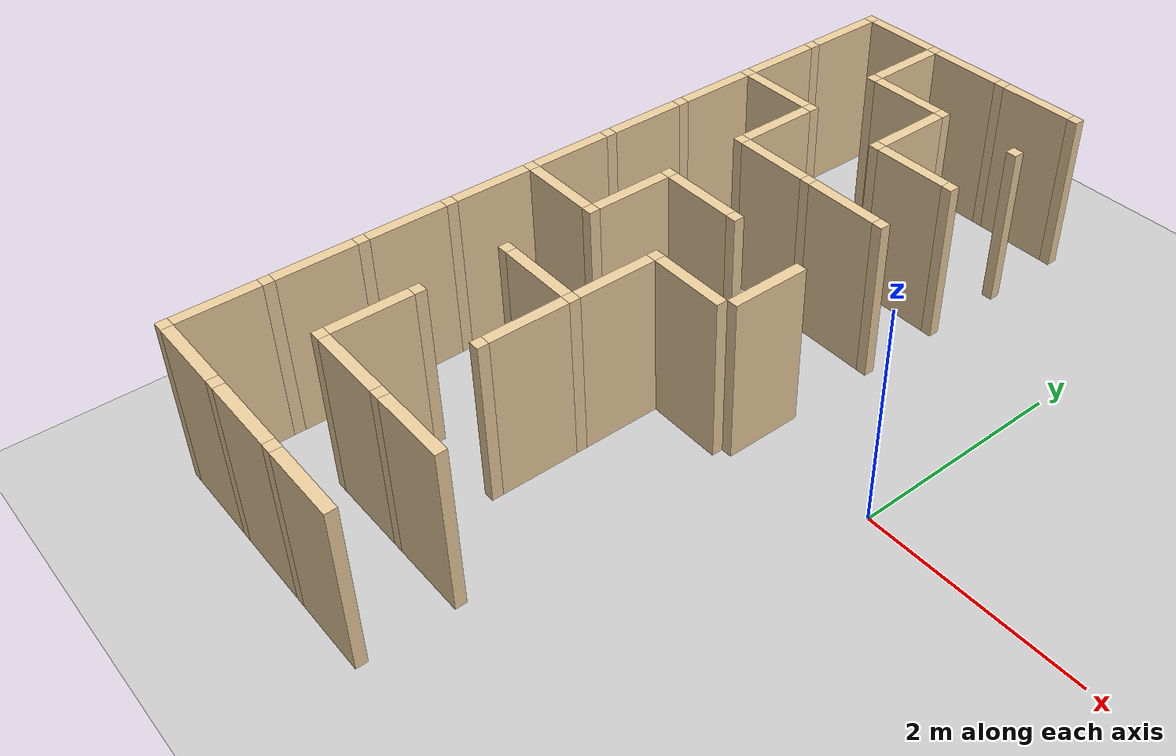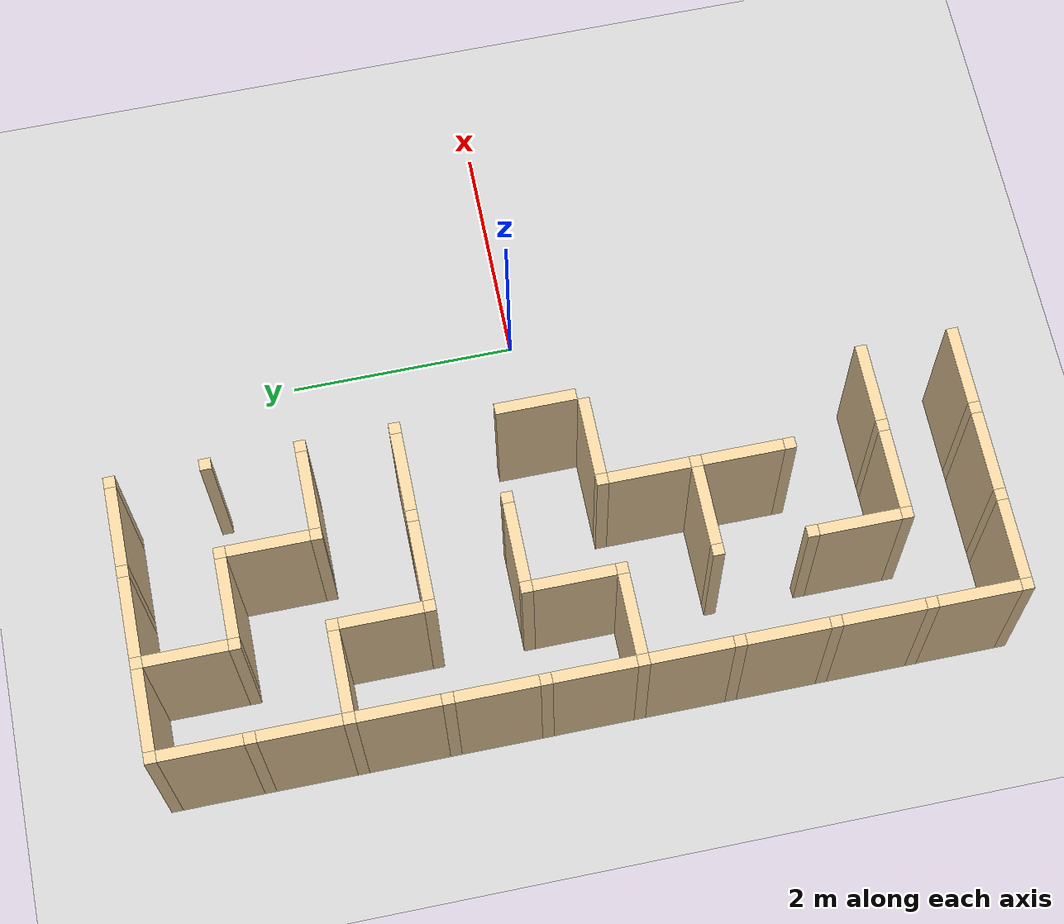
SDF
<sdf version="1.8">
 <world name="maze_world">
  <model name="ground_plane">
   <static>true</static>
   <link name="link">
    <collision name="collision">
     <geometry><plane><normal>0 0 1</normal><size>100 100</size></plane></geometry>
    </collision>
    <visual name="visual">
     <geometry><plane><normal>0 0 1</normal><size>100 100</size></plane></geometry>
     <material><ambient>0.8 0.8 0.8 1</ambient><diffuse>0.8 0.8 0.8 1</diffuse></material>
    </visual>
   </link>
  </model>
  <model name="maze">
   <link name="Wall_0_0_h">
    <collision name="Wall_0_Collision">
     <geometry><box><size>0.7000000000000001 0.1 1.5</size></box></geometry>
     <pose>0 0 0.75 0 -0 0</pose>
    </collision>
    <visual name="Wall_0_Visual">
     <pose>0 0 0.75 0 -0 0</pose>
     <geometry><box><size>0.7000000000000001 0.1 1.5</size></box></geometry>
     <material>
      <diffuse>0.921569 0.807843 0.615686 1</diffuse>
      <ambient>0.921569 0.807843 0.615686 1</ambient>
     </material>
     <meta><layer>0</layer></meta>
    </visual>
    <pose>-3.2 3.6 0 0 -0 0</pose>
   </link>
   <link name="Wall_0_0_v">
    <collision name="Wall_0_Collision">
     <geometry><box><size>0.7000000000000001 0.1 1.5</size></box></geometry>
     <pose>0 0 0.75 0 -0 0</pose>
    </collision>
    <visual name="Wall_0_Visual">
     <pose>0 0 0.75 0 -0 0</pose>
     <geometry><box><size>0.7000000000000001 0.1 1.5</size></box></geometry>
     <material>
      <diffuse>0.921569 0.807843 0.615686 1</diffuse>
      <ambient>0.921569 0.807843 0.615686 1</ambient>
     </material>
     <meta><layer>0</layer></meta>
    </visual>
    <pose>-3.6 3.2 0 0 -0 1.5708</pose>
   </link>
   <link name="Joint_-3.6_3.6">
    <collision name="Wall_2_Collision">
     <geometry><box><size>0.1 0.1 1.5</size></box></geometry>
     <pose>0 0 0.75 0 -0 0</pose>
    </collision>
    <visual name="Wall_2_Visual">
     <pose>0 0 0.75 0 -0 0</pose>
     <geometry><box><size>0.1 0.1 1.5</size></box></geometry>
     <material>
      <diffuse>0.921569 0.807843 0.615686 1</diffuse>
      <ambient>0.721569 0.907843 0.215686 1</ambient>
     </material>
     <meta><layer>0</layer></meta>
    </visual>
    <pose>-3.6 3.6 0 0 -0 0</pose>
   </link>
   <link name="Wall_1_0_h">
    <collision name="Wall_0_Collision">
     <geometry><box><size>0.7000000000000001 0.1 1.5</size></box></geometry>
     <pose>0 0 0.75 0 -0 0</pose>
    </collision>
    <visual name="Wall_0_Visual">
     <pose>0 0 0.75 0 -0 0</pose>
     <geometry><box><size>0.7000000000000001 0.1 1.5</size></box></geometry>
     <material>
      <diffuse>0.921569 0.807843 0.615686 1</diffuse>
      <ambient>0.921569 0.807843 0.615686 1</ambient>
     </material>
     <meta><layer>0</layer></meta>
    </visual>
    <pose>-2.4 3.6 0 0 -0 0</pose>
   </link>
   <link name="Wall_1_0_v">
    <collision name="Wall_0_Collision">
     <geometry><box><size>0.7000000000000001 0.1 1.5</size></box></geometry>
     <pose>0 0 0.75 0 -0 0</pose>
    </collision>
    <visual name="Wall_0_Visual">
     <pose>0 0 0.75 0 -0 0</pose>
     <geometry><box><size>0.7000000000000001 0.1 1.5</size></box></geometry>
     <material>
      <diffuse>0.921569 0.807843 0.615686 1</diffuse>
      <ambient>0.921569 0.807843 0.615686 1</ambient>
     </material>
     <meta><layer>0</layer></meta>
    </visual>
    <pose>-2.8 3.2 0 0 -0 1.5708</pose>
   </link>
   <link name="Joint_-2.8_3.6">
    <collision name="Wall_2_Collision">
     <geometry><box><size>0.1 0.1 1.5</size></box></geometry>
     <pose>0 0 0.75 0 -0 0</pose>
    </collision>
    <visual name="Wall_2_Visual">
     <pose>0 0 0.75 0 -0 0</pose>
     <geometry><box><size>0.1 0.1 1.5</size></box></geometry>
     <material>
      <diffuse>0.921569 0.807843 0.615686 1</diffuse>
      <ambient>0.721569 0.907843 0.215686 1</ambient>
     </material>
     <meta><layer>0</layer></meta>
    </visual>
    <pose>-2.8 3.6 0 0 -0 0</pose>
   </link>
   <link name="Wall_2_0_h">
    <collision name="Wall_0_Collision">
     <geometry><box><size>0.7000000000000001 0.1 1.5</size></box></geometry>
     <pose>0 0 0.75 0 -0 0</pose>
    </collision>
    <visual name="Wall_0_Visual">
     <pose>0 0 0.75 0 -0 0</pose>
     <geometry><box><size>0.7000000000000001 0.1 1.5</size></box></geometry>
     <material>
      <diffuse>0.921569 0.807843 0.615686 1</diffuse>
      <ambient>0.921569 0.807843 0.615686 1</ambient>
     </material>
     <meta><layer>0</layer></meta>
    </visual>
    <pose>-1.6 3.6 0 0 -0 0</pose>
   </link>
   <link name="Joint_-2.0_3.6">
    <collision name="Wall_2_Collision">
     <geometry><box><size>0.1 0.1 1.5</size></box></geometry>
     <pose>0 0 0.75 0 -0 0</pose>
    </collision>
    <visual name="Wall_2_Visual">
     <pose>0 0 0.75 0 -0 0</pose>
     <geometry><box><size>0.1 0.1 1.5</size></box></geometry>
     <material>
      <diffuse>0.921569 0.807843 0.615686 1</diffuse>
      <ambient>0.721569 0.907843 0.215686 1</ambient>
     </material>
     <meta><layer>0</layer></meta>
    </visual>
    <pose>-2.0 3.6 0 0 -0 0</pose>
   </link>
   <link name="Joint_-1.1999999999999997_3.6">
    <collision name="Wall_2_Collision">
     <geometry><box><size>0.1 0.1 1.5</size></box></geometry>
     <pose>0 0 0.75 0 -0 0</pose>
    </collision>
    <visual name="Wall_2_Visual">
     <pose>0 0 0.75 0 -0 0</pose>
     <geometry><box><size>0.1 0.1 1.5</size></box></geometry>
     <material>
      <diffuse>0.921569 0.807843 0.615686 1</diffuse>
      <ambient>0.721569 0.907843 0.215686 1</ambient>
     </material>
     <meta><layer>0</layer></meta>
    </visual>
    <pose>-1.1999999999999997 3.6 0 0 -0 0</pose>
   </link>
   <link name="Wall_0_1_v">
    <collision name="Wall_0_Collision">
     <geometry><box><size>0.7000000000000001 0.1 1.5</size></box></geometry>
     <pose>0 0 0.75 0 -0 0</pose>
    </collision>
    <visual name="Wall_0_Visual">
     <pose>0 0 0.75 0 -0 0</pose>
     <geometry><box><size>0.7000000000000001 0.1 1.5</size></box></geometry>
     <material>
      <diffuse>0.921569 0.807843 0.615686 1</diffuse>
      <ambient>0.921569 0.807843 0.615686 1</ambient>
     </material>
     <meta><layer>0</layer></meta>
    </visual>
    <pose>-3.6 2.4 0 0 -0 1.5708</pose>
   </link>
   <link name="Joint_-3.6_2.8">
    <collision name="Wall_2_Collision">
     <geometry><box><size>0.1 0.1 1.5</size></box></geometry>
     <pose>0 0 0.75 0 -0 0</pose>
    </collision>
    <visual name="Wall_2_Visual">
     <pose>0 0 0.75 0 -0 0</pose>
     <geometry><box><size>0.1 0.1 1.5</size></box></geometry>
     <material>
      <diffuse>0.921569 0.807843 0.615686 1</diffuse>
      <ambient>0.721569 0.907843 0.215686 1</ambient>
     </material>
     <meta><layer>0</layer></meta>
    </visual>
    <pose>-3.6 2.8 0 0 -0 0</pose>
   </link>
   <link name="Wall_1_1_h">
    <collision name="Wall_0_Collision">
     <geometry><box><size>0.7000000000000001 0.1 1.5</size></box></geometry>
     <pose>0 0 0.75 0 -0 0</pose>
    </collision>
    <visual name="Wall_0_Visual">
     <pose>0 0 0.75 0 -0 0</pose>
     <geometry><box><size>0.7000000000000001 0.1 1.5</size></box></geometry>
     <material>
      <diffuse>0.921569 0.807843 0.615686 1</diffuse>
      <ambient>0.921569 0.807843 0.615686 1</ambient>
     </material>
     <meta><layer>0</layer></meta>
    </visual>
    <pose>-2.4 2.8 0 0 -0 0</pose>
   </link>
   <link name="Joint_-2.8_2.8">
    <collision name="Wall_2_Collision">
     <geometry><box><size>0.1 0.1 1.5</size></box></geometry>
     <pose>0 0 0.75 0 -0 0</pose>
    </collision>
    <visual name="Wall_2_Visual">
     <pose>0 0 0.75 0 -0 0</pose>
     <geometry><box><size>0.1 0.1 1.5</size></box></geometry>
     <material>
      <diffuse>0.921569 0.807843 0.615686 1</diffuse>
      <ambient>0.721569 0.907843 0.215686 1</ambient>
     </material>
     <meta><layer>0</layer></meta>
    </visual>
    <pose>-2.8 2.8 0 0 -0 0</pose>
   </link>
   <link name="Wall_2_1_v">
    <collision name="Wall_0_Collision">
     <geometry><box><size>0.7000000000000001 0.1 1.5</size></box></geometry>
     <pose>0 0 0.75 0 -0 0</pose>
    </collision>
    <visual name="Wall_0_Visual">
     <pose>0 0 0.75 0 -0 0</pose>
     <geometry><box><size>0.7000000000000001 0.1 1.5</size></box></geometry>
     <material>
      <diffuse>0.921569 0.807843 0.615686 1</diffuse>
      <ambient>0.921569 0.807843 0.615686 1</ambient>
     </material>
     <meta><layer>0</layer></meta>
    </visual>
    <pose>-2.0 2.4 0 0 -0 1.5708</pose>
   </link>
   <link name="Joint_-2.0_2.8">
    <collision name="Wall_2_Collision">
     <geometry><box><size>0.1 0.1 1.5</size></box></geometry>
     <pose>0 0 0.75 0 -0 0</pose>
    </collision>
    <visual name="Wall_2_Visual">
     <pose>0 0 0.75 0 -0 0</pose>
     <geometry><box><size>0.1 0.1 1.5</size></box></geometry>
     <material>
      <diffuse>0.921569 0.807843 0.615686 1</diffuse>
      <ambient>0.721569 0.907843 0.215686 1</ambient>
     </material>
     <meta><layer>0</layer></meta>
    </visual>
    <pose>-2.0 2.8 0 0 -0 0</pose>
   </link>
   <link name="Joint_-1.1999999999999997_2.8">
    <collision name="Wall_2_Collision">
     <geometry><box><size>0.1 0.1 1.5</size></box></geometry>
     <pose>0 0 0.75 0 -0 0</pose>
    </collision>
    <visual name="Wall_2_Visual">
     <pose>0 0 0.75 0 -0 0</pose>
     <geometry><box><size>0.1 0.1 1.5</size></box></geometry>
     <material>
      <diffuse>0.921569 0.807843 0.615686 1</diffuse>
      <ambient>0.721569 0.907843 0.215686 1</ambient>
     </material>
     <meta><layer>0</layer></meta>
    </visual>
    <pose>-1.1999999999999997 2.8 0 0 -0 0</pose>
   </link>
   <link name="Wall_0_2_h">
    <collision name="Wall_0_Collision">
     <geometry><box><size>0.7000000000000001 0.1 1.5</size></box></geometry>
     <pose>0 0 0.75 0 -0 0</pose>
    </collision>
    <visual name="Wall_0_Visual">
     <pose>0 0 0.75 0 -0 0</pose>
     <geometry><box><size>0.7000000000000001 0.1 1.5</size></box></geometry>
     <material>
      <diffuse>0.921569 0.807843 0.615686 1</diffuse>
      <ambient>0.921569 0.807843 0.615686 1</ambient>
     </material>
     <meta><layer>0</layer></meta>
    </visual>
    <pose>-3.2 2.0 0 0 -0 0</pose>
   </link>
   <link name="Wall_0_2_v">
    <collision name="Wall_0_Collision">
     <geometry><box><size>0.7000000000000001 0.1 1.5</size></box></geometry>
     <pose>0 0 0.75 0 -0 0</pose>
    </collision>
    <visual name="Wall_0_Visual">
     <pose>0 0 0.75 0 -0 0</pose>
     <geometry><box><size>0.7000000000000001 0.1 1.5</size></box></geometry>
     <material>
      <diffuse>0.921569 0.807843 0.615686 1</diffuse>
      <ambient>0.921569 0.807843 0.615686 1</ambient>
     </material>
     <meta><layer>0</layer></meta>
    </visual>
    <pose>-3.6 1.6 0 0 -0 1.5708</pose>
   </link>
   <link name="Joint_-3.6_2.0">
    <collision name="Wall_2_Collision">
     <geometry><box><size>0.1 0.1 1.5</size></box></geometry>
     <pose>0 0 0.75 0 -0 0</pose>
    </collision>
    <visual name="Wall_2_Visual">
     <pose>0 0 0.75 0 -0 0</pose>
     <geometry><box><size>0.1 0.1 1.5</size></box></geometry>
     <material>
      <diffuse>0.921569 0.807843 0.615686 1</diffuse>
      <ambient>0.721569 0.907843 0.215686 1</ambient>
     </material>
     <meta><layer>0</layer></meta>
    </visual>
    <pose>-3.6 2.0 0 0 -0 0</pose>
   </link>
   <link name="Wall_1_2_v">
    <collision name="Wall_0_Collision">
     <geometry><box><size>0.7000000000000001 0.1 1.5</size></box></geometry>
     <pose>0 0 0.75 0 -0 0</pose>
    </collision>
    <visual name="Wall_0_Visual">
     <pose>0 0 0.75 0 -0 0</pose>
     <geometry><box><size>0.7000000000000001 0.1 1.5</size></box></geometry>
     <material>
      <diffuse>0.921569 0.807843 0.615686 1</diffuse>
      <ambient>0.921569 0.807843 0.615686 1</ambient>
     </material>
     <meta><layer>0</layer></meta>
    </visual>
    <pose>-2.8 1.6 0 0 -0 1.5708</pose>
   </link>
   <link name="Joint_-2.8_2.0">
    <collision name="Wall_2_Collision">
     <geometry><box><size>0.1 0.1 1.5</size></box></geometry>
     <pose>0 0 0.75 0 -0 0</pose>
    </collision>
    <visual name="Wall_2_Visual">
     <pose>0 0 0.75 0 -0 0</pose>
     <geometry><box><size>0.1 0.1 1.5</size></box></geometry>
     <material>
      <diffuse>0.921569 0.807843 0.615686 1</diffuse>
      <ambient>0.721569 0.907843 0.215686 1</ambient>
     </material>
     <meta><layer>0</layer></meta>
    </visual>
    <pose>-2.8 2.0 0 0 -0 0</pose>
   </link>
   <link name="Wall_2_2_h">
    <collision name="Wall_0_Collision">
     <geometry><box><size>0.7000000000000001 0.1 1.5</size></box></geometry>
     <pose>0 0 0.75 0 -0 0</pose>
    </collision>
    <visual name="Wall_0_Visual">
     <pose>0 0 0.75 0 -0 0</pose>
     <geometry><box><size>0.7000000000000001 0.1 1.5</size></box></geometry>
     <material>
      <diffuse>0.921569 0.807843 0.615686 1</diffuse>
      <ambient>0.921569 0.807843 0.615686 1</ambient>
     </material>
     <meta><layer>0</layer></meta>
    </visual>
    <pose>-1.6 2.0 0 0 -0 0</pose>
   </link>
   <link name="Joint_-2.0_2.0">
    <collision name="Wall_2_Collision">
     <geometry><box><size>0.1 0.1 1.5</size></box></geometry>
     <pose>0 0 0.75 0 -0 0</pose>
    </collision>
    <visual name="Wall_2_Visual">
     <pose>0 0 0.75 0 -0 0</pose>
     <geometry><box><size>0.1 0.1 1.5</size></box></geometry>
     <material>
      <diffuse>0.921569 0.807843 0.615686 1</diffuse>
      <ambient>0.721569 0.907843 0.215686 1</ambient>
     </material>
     <meta><layer>0</layer></meta>
    </visual>
    <pose>-2.0 2.0 0 0 -0 0</pose>
   </link>
   <link name="Joint_-1.1999999999999997_2.0">
    <collision name="Wall_2_Collision">
     <geometry><box><size>0.1 0.1 1.5</size></box></geometry>
     <pose>0 0 0.75 0 -0 0</pose>
    </collision>
    <visual name="Wall_2_Visual">
     <pose>0 0 0.75 0 -0 0</pose>
     <geometry><box><size>0.1 0.1 1.5</size></box></geometry>
     <material>
      <diffuse>0.921569 0.807843 0.615686 1</diffuse>
      <ambient>0.721569 0.907843 0.215686 1</ambient>
     </material>
     <meta><layer>0</layer></meta>
    </visual>
    <pose>-1.1999999999999997 2.0 0 0 -0 0</pose>
   </link>
   <link name="Wall_0_3_v">
    <collision name="Wall_0_Collision">
     <geometry><box><size>0.7000000000000001 0.1 1.5</size></box></geometry>
     <pose>0 0 0.75 0 -0 0</pose>
    </collision>
    <visual name="Wall_0_Visual">
     <pose>0 0 0.75 0 -0 0</pose>
     <geometry><box><size>0.7000000000000001 0.1 1.5</size></box></geometry>
     <material>
      <diffuse>0.921569 0.807843 0.615686 1</diffuse>
      <ambient>0.921569 0.807843 0.615686 1</ambient>
     </material>
     <meta><layer>0</layer></meta>
    </visual>
    <pose>-3.6 0.7999999999999998 0 0 -0 1.5708</pose>
   </link>
   <link name="Joint_-3.6_1.1999999999999997">
    <collision name="Wall_2_Collision">
     <geometry><box><size>0.1 0.1 1.5</size></box></geometry>
     <pose>0 0 0.75 0 -0 0</pose>
    </collision>
    <visual name="Wall_2_Visual">
     <pose>0 0 0.75 0 -0 0</pose>
     <geometry><box><size>0.1 0.1 1.5</size></box></geometry>
     <material>
      <diffuse>0.921569 0.807843 0.615686 1</diffuse>
      <ambient>0.721569 0.907843 0.215686 1</ambient>
     </material>
     <meta><layer>0</layer></meta>
    </visual>
    <pose>-3.6 1.1999999999999997 0 0 -0 0</pose>
   </link>
   <link name="Wall_1_3_h">
    <collision name="Wall_0_Collision">
     <geometry><box><size>0.7000000000000001 0.1 1.5</size></box></geometry>
     <pose>0 0 0.75 0 -0 0</pose>
    </collision>
    <visual name="Wall_0_Visual">
     <pose>0 0 0.75 0 -0 0</pose>
     <geometry><box><size>0.7000000000000001 0.1 1.5</size></box></geometry>
     <material>
      <diffuse>0.921569 0.807843 0.615686 1</diffuse>
      <ambient>0.921569 0.807843 0.615686 1</ambient>
     </material>
     <meta><layer>0</layer></meta>
    </visual>
    <pose>-2.4 1.1999999999999997 0 0 -0 0</pose>
   </link>
   <link name="Joint_-2.8_1.1999999999999997">
    <collision name="Wall_2_Collision">
     <geometry><box><size>0.1 0.1 1.5</size></box></geometry>
     <pose>0 0 0.75 0 -0 0</pose>
    </collision>
    <visual name="Wall_2_Visual">
     <pose>0 0 0.75 0 -0 0</pose>
     <geometry><box><size>0.1 0.1 1.5</size></box></geometry>
     <material>
      <diffuse>0.921569 0.807843 0.615686 1</diffuse>
      <ambient>0.721569 0.907843 0.215686 1</ambient>
     </material>
     <meta><layer>0</layer></meta>
    </visual>
    <pose>-2.8 1.1999999999999997 0 0 -0 0</pose>
   </link>
   <link name="Wall_2_3_h">
    <collision name="Wall_0_Collision">
     <geometry><box><size>0.7000000000000001 0.1 1.5</size></box></geometry>
     <pose>0 0 0.75 0 -0 0</pose>
    </collision>
    <visual name="Wall_0_Visual">
     <pose>0 0 0.75 0 -0 0</pose>
     <geometry><box><size>0.7000000000000001 0.1 1.5</size></box></geometry>
     <material>
      <diffuse>0.921569 0.807843 0.615686 1</diffuse>
      <ambient>0.921569 0.807843 0.615686 1</ambient>
     </material>
     <meta><layer>0</layer></meta>
    </visual>
    <pose>-1.6 1.1999999999999997 0 0 -0 0</pose>
   </link>
   <link name="Joint_-2.0_1.1999999999999997">
    <collision name="Wall_2_Collision">
     <geometry><box><size>0.1 0.1 1.5</size></box></geometry>
     <pose>0 0 0.75 0 -0 0</pose>
    </collision>
    <visual name="Wall_2_Visual">
     <pose>0 0 0.75 0 -0 0</pose>
     <geometry><box><size>0.1 0.1 1.5</size></box></geometry>
     <material>
      <diffuse>0.921569 0.807843 0.615686 1</diffuse>
      <ambient>0.721569 0.907843 0.215686 1</ambient>
     </material>
     <meta><layer>0</layer></meta>
    </visual>
    <pose>-2.0 1.1999999999999997 0 0 -0 0</pose>
   </link>
   <link name="Joint_-1.1999999999999997_1.1999999999999997">
    <collision name="Wall_2_Collision">
     <geometry><box><size>0.1 0.1 1.5</size></box></geometry>
     <pose>0 0 0.75 0 -0 0</pose>
    </collision>
    <visual name="Wall_2_Visual">
     <pose>0 0 0.75 0 -0 0</pose>
     <geometry><box><size>0.1 0.1 1.5</size></box></geometry>
     <material>
      <diffuse>0.921569 0.807843 0.615686 1</diffuse>
      <ambient>0.721569 0.907843 0.215686 1</ambient>
     </material>
     <meta><layer>0</layer></meta>
    </visual>
    <pose>-1.1999999999999997 1.1999999999999997 0 0 -0 0</pose>
   </link>
   <link name="Wall_0_4_v">
    <collision name="Wall_0_Collision">
     <geometry><box><size>0.7000000000000001 0.1 1.5</size></box></geometry>
     <pose>0 0 0.75 0 -0 0</pose>
    </collision>
    <visual name="Wall_0_Visual">
     <pose>0 0 0.75 0 -0 0</pose>
     <geometry><box><size>0.7000000000000001 0.1 1.5</size></box></geometry>
     <material>
      <diffuse>0.921569 0.807843 0.615686 1</diffuse>
      <ambient>0.921569 0.807843 0.615686 1</ambient>
     </material>
     <meta><layer>0</layer></meta>
    </visual>
    <pose>-3.6 -0.0 0 0 -0 1.5708</pose>
   </link>
   <link name="Joint_-3.6_0.3999999999999999">
    <collision name="Wall_2_Collision">
     <geometry><box><size>0.1 0.1 1.5</size></box></geometry>
     <pose>0 0 0.75 0 -0 0</pose>
    </collision>
    <visual name="Wall_2_Visual">
     <pose>0 0 0.75 0 -0 0</pose>
     <geometry><box><size>0.1 0.1 1.5</size></box></geometry>
     <material>
      <diffuse>0.921569 0.807843 0.615686 1</diffuse>
      <ambient>0.721569 0.907843 0.215686 1</ambient>
     </material>
     <meta><layer>0</layer></meta>
    </visual>
    <pose>-3.6 0.3999999999999999 0 0 -0 0</pose>
   </link>
   <link name="Wall_1_4_h">
    <collision name="Wall_0_Collision">
     <geometry><box><size>0.7000000000000001 0.1 1.5</size></box></geometry>
     <pose>0 0 0.75 0 -0 0</pose>
    </collision>
    <visual name="Wall_0_Visual">
     <pose>0 0 0.75 0 -0 0</pose>
     <geometry><box><size>0.7000000000000001 0.1 1.5</size></box></geometry>
     <material>
      <diffuse>0.921569 0.807843 0.615686 1</diffuse>
      <ambient>0.921569 0.807843 0.615686 1</ambient>
     </material>
     <meta><layer>0</layer></meta>
    </visual>
    <pose>-2.4 0.3999999999999999 0 0 -0 0</pose>
   </link>
   <link name="Wall_1_4_v">
    <collision name="Wall_0_Collision">
     <geometry><box><size>0.7000000000000001 0.1 1.5</size></box></geometry>
     <pose>0 0 0.75 0 -0 0</pose>
    </collision>
    <visual name="Wall_0_Visual">
     <pose>0 0 0.75 0 -0 0</pose>
     <geometry><box><size>0.7000000000000001 0.1 1.5</size></box></geometry>
     <material>
      <diffuse>0.921569 0.807843 0.615686 1</diffuse>
      <ambient>0.921569 0.807843 0.615686 1</ambient>
     </material>
     <meta><layer>0</layer></meta>
    </visual>
    <pose>-2.8 -0.0 0 0 -0 1.5708</pose>
   </link>
   <link name="Joint_-2.8_0.3999999999999999">
    <collision name="Wall_2_Collision">
     <geometry><box><size>0.1 0.1 1.5</size></box></geometry>
     <pose>0 0 0.75 0 -0 0</pose>
    </collision>
    <visual name="Wall_2_Visual">
     <pose>0 0 0.75 0 -0 0</pose>
     <geometry><box><size>0.1 0.1 1.5</size></box></geometry>
     <material>
      <diffuse>0.921569 0.807843 0.615686 1</diffuse>
      <ambient>0.721569 0.907843 0.215686 1</ambient>
     </material>
     <meta><layer>0</layer></meta>
    </visual>
    <pose>-2.8 0.3999999999999999 0 0 -0 0</pose>
   </link>
   <link name="Joint_-2.0_0.3999999999999999">
    <collision name="Wall_2_Collision">
     <geometry><box><size>0.1 0.1 1.5</size></box></geometry>
     <pose>0 0 0.75 0 -0 0</pose>
    </collision>
    <visual name="Wall_2_Visual">
     <pose>0 0 0.75 0 -0 0</pose>
     <geometry><box><size>0.1 0.1 1.5</size></box></geometry>
     <material>
      <diffuse>0.921569 0.807843 0.615686 1</diffuse>
      <ambient>0.721569 0.907843 0.215686 1</ambient>
     </material>
     <meta><layer>0</layer></meta>
    </visual>
    <pose>-2.0 0.3999999999999999 0 0 -0 0</pose>
   </link>
   <link name="Wall_3_4_v">
    <collision name="Wall_0_Collision">
     <geometry><box><size>0.7000000000000001 0.1 1.5</size></box></geometry>
     <pose>0 0 0.75 0 -0 0</pose>
    </collision>
    <visual name="Wall_0_Visual">
     <pose>0 0 0.75 0 -0 0</pose>
     <geometry><box><size>0.7000000000000001 0.1 1.5</size></box></geometry>
     <material>
      <diffuse>0.921569 0.807843 0.615686 1</diffuse>
      <ambient>0.921569 0.807843 0.615686 1</ambient>
     </material>
     <meta><layer>0</layer></meta>
    </visual>
    <pose>-1.1999999999999997 -0.0 0 0 -0 1.5708</pose>
   </link>
   <link name="Wall_0_5_h">
    <collision name="Wall_0_Collision">
     <geometry><box><size>0.7000000000000001 0.1 1.5</size></box></geometry>
     <pose>0 0 0.75 0 -0 0</pose>
    </collision>
    <visual name="Wall_0_Visual">
     <pose>0 0 0.75 0 -0 0</pose>
     <geometry><box><size>0.7000000000000001 0.1 1.5</size></box></geometry>
     <material>
      <diffuse>0.921569 0.807843 0.615686 1</diffuse>
      <ambient>0.921569 0.807843 0.615686 1</ambient>
     </material>
     <meta><layer>0</layer></meta>
    </visual>
    <pose>-3.2 -0.3999999999999999 0 0 -0 0</pose>
   </link>
   <link name="Wall_0_5_v">
    <collision name="Wall_0_Collision">
     <geometry><box><size>0.7000000000000001 0.1 1.5</size></box></geometry>
     <pose>0 0 0.75 0 -0 0</pose>
    </collision>
    <visual name="Wall_0_Visual">
     <pose>0 0 0.75 0 -0 0</pose>
     <geometry><box><size>0.7000000000000001 0.1 1.5</size></box></geometry>
     <material>
      <diffuse>0.921569 0.807843 0.615686 1</diffuse>
      <ambient>0.921569 0.807843 0.615686 1</ambient>
     </material>
     <meta><layer>0</layer></meta>
    </visual>
    <pose>-3.6 -0.8000000000000003 0 0 -0 1.5708</pose>
   </link>
   <link name="Joint_-3.6_-0.3999999999999999">
    <collision name="Wall_2_Collision">
     <geometry><box><size>0.1 0.1 1.5</size></box></geometry>
     <pose>0 0 0.75 0 -0 0</pose>
    </collision>
    <visual name="Wall_2_Visual">
     <pose>0 0 0.75 0 -0 0</pose>
     <geometry><box><size>0.1 0.1 1.5</size></box></geometry>
     <material>
      <diffuse>0.921569 0.807843 0.615686 1</diffuse>
      <ambient>0.721569 0.907843 0.215686 1</ambient>
     </material>
     <meta><layer>0</layer></meta>
    </visual>
    <pose>-3.6 -0.3999999999999999 0 0 -0 0</pose>
   </link>
   <link name="Joint_-2.8_-0.3999999999999999">
    <collision name="Wall_2_Collision">
     <geometry><box><size>0.1 0.1 1.5</size></box></geometry>
     <pose>0 0 0.75 0 -0 0</pose>
    </collision>
    <visual name="Wall_2_Visual">
     <pose>0 0 0.75 0 -0 0</pose>
     <geometry><box><size>0.1 0.1 1.5</size></box></geometry>
     <material>
      <diffuse>0.921569 0.807843 0.615686 1</diffuse>
      <ambient>0.721569 0.907843 0.215686 1</ambient>
     </material>
     <meta><layer>0</layer></meta>
    </visual>
    <pose>-2.8 -0.3999999999999999 0 0 -0 0</pose>
   </link>
   <link name="Wall_2_5_h">
    <collision name="Wall_0_Collision">
     <geometry><box><size>0.7000000000000001 0.1 1.5</size></box></geometry>
     <pose>0 0 0.75 0 -0 0</pose>
    </collision>
    <visual name="Wall_0_Visual">
     <pose>0 0 0.75 0 -0 0</pose>
     <geometry><box><size>0.7000000000000001 0.1 1.5</size></box></geometry>
     <material>
      <diffuse>0.921569 0.807843 0.615686 1</diffuse>
      <ambient>0.921569 0.807843 0.615686 1</ambient>
     </material>
     <meta><layer>0</layer></meta>
    </visual>
    <pose>-1.6 -0.3999999999999999 0 0 -0 0</pose>
   </link>
   <link name="Wall_2_5_v">
    <collision name="Wall_0_Collision">
     <geometry><box><size>0.7000000000000001 0.1 1.5</size></box></geometry>
     <pose>0 0 0.75 0 -0 0</pose>
    </collision>
    <visual name="Wall_0_Visual">
     <pose>0 0 0.75 0 -0 0</pose>
     <geometry><box><size>0.7000000000000001 0.1 1.5</size></box></geometry>
     <material>
      <diffuse>0.921569 0.807843 0.615686 1</diffuse>
      <ambient>0.921569 0.807843 0.615686 1</ambient>
     </material>
     <meta><layer>0</layer></meta>
    </visual>
    <pose>-2.0 -0.8000000000000003 0 0 -0 1.5708</pose>
   </link>
   <link name="Joint_-2.0_-0.3999999999999999">
    <collision name="Wall_2_Collision">
     <geometry><box><size>0.1 0.1 1.5</size></box></geometry>
     <pose>0 0 0.75 0 -0 0</pose>
    </collision>
    <visual name="Wall_2_Visual">
     <pose>0 0 0.75 0 -0 0</pose>
     <geometry><box><size>0.1 0.1 1.5</size></box></geometry>
     <material>
      <diffuse>0.921569 0.807843 0.615686 1</diffuse>
      <ambient>0.721569 0.907843 0.215686 1</ambient>
     </material>
     <meta><layer>0</layer></meta>
    </visual>
    <pose>-2.0 -0.3999999999999999 0 0 -0 0</pose>
   </link>
   <link name="Wall_0_6_v">
    <collision name="Wall_0_Collision">
     <geometry><box><size>0.7000000000000001 0.1 1.5</size></box></geometry>
     <pose>0 0 0.75 0 -0 0</pose>
    </collision>
    <visual name="Wall_0_Visual">
     <pose>0 0 0.75 0 -0 0</pose>
     <geometry><box><size>0.7000000000000001 0.1 1.5</size></box></geometry>
     <material>
      <diffuse>0.921569 0.807843 0.615686 1</diffuse>
      <ambient>0.921569 0.807843 0.615686 1</ambient>
     </material>
     <meta><layer>0</layer></meta>
    </visual>
    <pose>-3.6 -1.600000000000001 0 0 -0 1.5708</pose>
   </link>
   <link name="Joint_-3.6_-1.2000000000000006">
    <collision name="Wall_2_Collision">
     <geometry><box><size>0.1 0.1 1.5</size></box></geometry>
     <pose>0 0 0.75 0 -0 0</pose>
    </collision>
    <visual name="Wall_2_Visual">
     <pose>0 0 0.75 0 -0 0</pose>
     <geometry><box><size>0.1 0.1 1.5</size></box></geometry>
     <material>
      <diffuse>0.921569 0.807843 0.615686 1</diffuse>
      <ambient>0.721569 0.907843 0.215686 1</ambient>
     </material>
     <meta><layer>0</layer></meta>
    </visual>
    <pose>-3.6 -1.2000000000000006 0 0 -0 0</pose>
   </link>
   <link name="Wall_1_6_h">
    <collision name="Wall_0_Collision">
     <geometry><box><size>0.7000000000000001 0.1 1.5</size></box></geometry>
     <pose>0 0 0.75 0 -0 0</pose>
    </collision>
    <visual name="Wall_0_Visual">
     <pose>0 0 0.75 0 -0 0</pose>
     <geometry><box><size>0.7000000000000001 0.1 1.5</size></box></geometry>
     <material>
      <diffuse>0.921569 0.807843 0.615686 1</diffuse>
      <ambient>0.921569 0.807843 0.615686 1</ambient>
     </material>
     <meta><layer>0</layer></meta>
    </visual>
    <pose>-2.4 -1.2000000000000006 0 0 -0 0</pose>
   </link>
   <link name="Joint_-2.8_-1.2000000000000006">
    <collision name="Wall_2_Collision">
     <geometry><box><size>0.1 0.1 1.5</size></box></geometry>
     <pose>0 0 0.75 0 -0 0</pose>
    </collision>
    <visual name="Wall_2_Visual">
     <pose>0 0 0.75 0 -0 0</pose>
     <geometry><box><size>0.1 0.1 1.5</size></box></geometry>
     <material>
      <diffuse>0.921569 0.807843 0.615686 1</diffuse>
      <ambient>0.721569 0.907843 0.215686 1</ambient>
     </material>
     <meta><layer>0</layer></meta>
    </visual>
    <pose>-2.8 -1.2000000000000006 0 0 -0 0</pose>
   </link>
   <link name="Wall_2_6_v">
    <collision name="Wall_0_Collision">
     <geometry><box><size>0.7000000000000001 0.1 1.5</size></box></geometry>
     <pose>0 0 0.75 0 -0 0</pose>
    </collision>
    <visual name="Wall_0_Visual">
     <pose>0 0 0.75 0 -0 0</pose>
     <geometry><box><size>0.7000000000000001 0.1 1.5</size></box></geometry>
     <material>
      <diffuse>0.921569 0.807843 0.615686 1</diffuse>
      <ambient>0.921569 0.807843 0.615686 1</ambient>
     </material>
     <meta><layer>0</layer></meta>
    </visual>
    <pose>-2.0 -1.600000000000001 0 0 -0 1.5708</pose>
   </link>
   <link name="Joint_-2.0_-1.2000000000000006">
    <collision name="Wall_2_Collision">
     <geometry><box><size>0.1 0.1 1.5</size></box></geometry>
     <pose>0 0 0.75 0 -0 0</pose>
    </collision>
    <visual name="Wall_2_Visual">
     <pose>0 0 0.75 0 -0 0</pose>
     <geometry><box><size>0.1 0.1 1.5</size></box></geometry>
     <material>
      <diffuse>0.921569 0.807843 0.615686 1</diffuse>
      <ambient>0.721569 0.907843 0.215686 1</ambient>
     </material>
     <meta><layer>0</layer></meta>
    </visual>
    <pose>-2.0 -1.2000000000000006 0 0 -0 0</pose>
   </link>
   <link name="Wall_0_7_v">
    <collision name="Wall_0_Collision">
     <geometry><box><size>0.7000000000000001 0.1 1.5</size></box></geometry>
     <pose>0 0 0.75 0 -0 0</pose>
    </collision>
    <visual name="Wall_0_Visual">
     <pose>0 0 0.75 0 -0 0</pose>
     <geometry><box><size>0.7000000000000001 0.1 1.5</size></box></geometry>
     <material>
      <diffuse>0.921569 0.807843 0.615686 1</diffuse>
      <ambient>0.921569 0.807843 0.615686 1</ambient>
     </material>
     <meta><layer>0</layer></meta>
    </visual>
    <pose>-3.6 -2.400000000000001 0 0 -0 1.5708</pose>
   </link>
   <link name="Joint_-3.6_-2.0000000000000004">
    <collision name="Wall_2_Collision">
     <geometry><box><size>0.1 0.1 1.5</size></box></geometry>
     <pose>0 0 0.75 0 -0 0</pose>
    </collision>
    <visual name="Wall_2_Visual">
     <pose>0 0 0.75 0 -0 0</pose>
     <geometry><box><size>0.1 0.1 1.5</size></box></geometry>
     <material>
      <diffuse>0.921569 0.807843 0.615686 1</diffuse>
      <ambient>0.721569 0.907843 0.215686 1</ambient>
     </material>
     <meta><layer>0</layer></meta>
    </visual>
    <pose>-3.6 -2.0000000000000004 0 0 -0 0</pose>
   </link>
   <link name="Wall_1_7_v">
    <collision name="Wall_0_Collision">
     <geometry><box><size>0.7000000000000001 0.1 1.5</size></box></geometry>
     <pose>0 0 0.75 0 -0 0</pose>
    </collision>
    <visual name="Wall_0_Visual">
     <pose>0 0 0.75 0 -0 0</pose>
     <geometry><box><size>0.7000000000000001 0.1 1.5</size></box></geometry>
     <material>
      <diffuse>0.921569 0.807843 0.615686 1</diffuse>
      <ambient>0.921569 0.807843 0.615686 1</ambient>
     </material>
     <meta><layer>0</layer></meta>
    </visual>
    <pose>-2.8 -2.400000000000001 0 0 -0 1.5708</pose>
   </link>
   <link name="Joint_-2.8_-2.0000000000000004">
    <collision name="Wall_2_Collision">
     <geometry><box><size>0.1 0.1 1.5</size></box></geometry>
     <pose>0 0 0.75 0 -0 0</pose>
    </collision>
    <visual name="Wall_2_Visual">
     <pose>0 0 0.75 0 -0 0</pose>
     <geometry><box><size>0.1 0.1 1.5</size></box></geometry>
     <material>
      <diffuse>0.921569 0.807843 0.615686 1</diffuse>
      <ambient>0.721569 0.907843 0.215686 1</ambient>
     </material>
     <meta><layer>0</layer></meta>
    </visual>
    <pose>-2.8 -2.0000000000000004 0 0 -0 0</pose>
   </link>
   <link name="Joint_-2.0_-2.0000000000000004">
    <collision name="Wall_2_Collision">
     <geometry><box><size>0.1 0.1 1.5</size></box></geometry>
     <pose>0 0 0.75 0 -0 0</pose>
    </collision>
    <visual name="Wall_2_Visual">
     <pose>0 0 0.75 0 -0 0</pose>
     <geometry><box><size>0.1 0.1 1.5</size></box></geometry>
     <material>
      <diffuse>0.921569 0.807843 0.615686 1</diffuse>
      <ambient>0.721569 0.907843 0.215686 1</ambient>
     </material>
     <meta><layer>0</layer></meta>
    </visual>
    <pose>-2.0 -2.0000000000000004 0 0 -0 0</pose>
   </link>
   <link name="Wall_0_8_v">
    <collision name="Wall_0_Collision">
     <geometry><box><size>0.7000000000000001 0.1 1.5</size></box></geometry>
     <pose>0 0 0.75 0 -0 0</pose>
    </collision>
    <visual name="Wall_0_Visual">
     <pose>0 0 0.75 0 -0 0</pose>
     <geometry><box><size>0.7000000000000001 0.1 1.5</size></box></geometry>
     <material>
      <diffuse>0.921569 0.807843 0.615686 1</diffuse>
      <ambient>0.921569 0.807843 0.615686 1</ambient>
     </material>
     <meta><layer>0</layer></meta>
    </visual>
    <pose>-3.6 -3.2000000000000006 0 0 -0 1.5708</pose>
   </link>
   <link name="Joint_-3.6_-2.8000000000000003">
    <collision name="Wall_2_Collision">
     <geometry><box><size>0.1 0.1 1.5</size></box></geometry>
     <pose>0 0 0.75 0 -0 0</pose>
    </collision>
    <visual name="Wall_2_Visual">
     <pose>0 0 0.75 0 -0 0</pose>
     <geometry><box><size>0.1 0.1 1.5</size></box></geometry>
     <material>
      <diffuse>0.921569 0.807843 0.615686 1</diffuse>
      <ambient>0.721569 0.907843 0.215686 1</ambient>
     </material>
     <meta><layer>0</layer></meta>
    </visual>
    <pose>-3.6 -2.8000000000000003 0 0 -0 0</pose>
   </link>
   <link name="Wall_0_9_h">
    <collision name="Wall_0_Collision">
     <geometry><box><size>0.7000000000000001 0.1 1.5</size></box></geometry>
     <pose>0 0 0.75 0 -0 0</pose>
    </collision>
    <visual name="Wall_0_Visual">
     <pose>0 0 0.75 0 -0 0</pose>
     <geometry><box><size>0.7000000000000001 0.1 1.5</size></box></geometry>
     <material>
      <diffuse>0.921569 0.807843 0.615686 1</diffuse>
      <ambient>0.921569 0.807843 0.615686 1</ambient>
     </material>
     <meta><layer>0</layer></meta>
    </visual>
    <pose>-3.2 -3.6 0 0 -0 0</pose>
   </link>
   <link name="Joint_-3.6_-3.6">
    <collision name="Wall_2_Collision">
     <geometry><box><size>0.1 0.1 1.5</size></box></geometry>
     <pose>0 0 0.75 0 -0 0</pose>
    </collision>
    <visual name="Wall_2_Visual">
     <pose>0 0 0.75 0 -0 0</pose>
     <geometry><box><size>0.1 0.1 1.5</size></box></geometry>
     <material>
      <diffuse>0.921569 0.807843 0.615686 1</diffuse>
      <ambient>0.721569 0.907843 0.215686 1</ambient>
     </material>
     <meta><layer>0</layer></meta>
    </visual>
    <pose>-3.6 -3.6 0 0 -0 0</pose>
   </link>
   <link name="Wall_1_8_h">
    <collision name="Wall_0_Collision">
     <geometry><box><size>0.7000000000000001 0.1 1.5</size></box></geometry>
     <pose>0 0 0.75 0 -0 0</pose>
    </collision>
    <visual name="Wall_0_Visual">
     <pose>0 0 0.75 0 -0 0</pose>
     <geometry><box><size>0.7000000000000001 0.1 1.5</size></box></geometry>
     <material>
      <diffuse>0.921569 0.807843 0.615686 1</diffuse>
      <ambient>0.921569 0.807843 0.615686 1</ambient>
     </material>
     <meta><layer>0</layer></meta>
    </visual>
    <pose>-2.4 -2.8000000000000003 0 0 -0 0</pose>
   </link>
   <link name="Joint_-2.8_-2.8000000000000003">
    <collision name="Wall_2_Collision">
     <geometry><box><size>0.1 0.1 1.5</size></box></geometry>
     <pose>0 0 0.75 0 -0 0</pose>
    </collision>
    <visual name="Wall_2_Visual">
     <pose>0 0 0.75 0 -0 0</pose>
     <geometry><box><size>0.1 0.1 1.5</size></box></geometry>
     <material>
      <diffuse>0.921569 0.807843 0.615686 1</diffuse>
      <ambient>0.721569 0.907843 0.215686 1</ambient>
     </material>
     <meta><layer>0</layer></meta>
    </visual>
    <pose>-2.8 -2.8000000000000003 0 0 -0 0</pose>
   </link>
   <link name="Wall_1_9_h">
    <collision name="Wall_0_Collision">
     <geometry><box><size>0.7000000000000001 0.1 1.5</size></box></geometry>
     <pose>0 0 0.75 0 -0 0</pose>
    </collision>
    <visual name="Wall_0_Visual">
     <pose>0 0 0.75 0 -0 0</pose>
     <geometry><box><size>0.7000000000000001 0.1 1.5</size></box></geometry>
     <material>
      <diffuse>0.921569 0.807843 0.615686 1</diffuse>
      <ambient>0.921569 0.807843 0.615686 1</ambient>
     </material>
     <meta><layer>0</layer></meta>
    </visual>
    <pose>-2.4 -3.6 0 0 -0 0</pose>
   </link>
   <link name="Joint_-2.8_-3.6">
    <collision name="Wall_2_Collision">
     <geometry><box><size>0.1 0.1 1.5</size></box></geometry>
     <pose>0 0 0.75 0 -0 0</pose>
    </collision>
    <visual name="Wall_2_Visual">
     <pose>0 0 0.75 0 -0 0</pose>
     <geometry><box><size>0.1 0.1 1.5</size></box></geometry>
     <material>
      <diffuse>0.921569 0.807843 0.615686 1</diffuse>
      <ambient>0.721569 0.907843 0.215686 1</ambient>
     </material>
     <meta><layer>0</layer></meta>
    </visual>
    <pose>-2.8 -3.6 0 0 -0 0</pose>
   </link>
   <link name="Wall_2_8_h">
    <collision name="Wall_0_Collision">
     <geometry><box><size>0.7000000000000001 0.1 1.5</size></box></geometry>
     <pose>0 0 0.75 0 -0 0</pose>
    </collision>
    <visual name="Wall_0_Visual">
     <pose>0 0 0.75 0 -0 0</pose>
     <geometry><box><size>0.7000000000000001 0.1 1.5</size></box></geometry>
     <material>
      <diffuse>0.921569 0.807843 0.615686 1</diffuse>
      <ambient>0.921569 0.807843 0.615686 1</ambient>
     </material>
     <meta><layer>0</layer></meta>
    </visual>
    <pose>-1.6 -2.8000000000000003 0 0 -0 0</pose>
   </link>
   <link name="Joint_-2.0_-2.8000000000000003">
    <collision name="Wall_2_Collision">
     <geometry><box><size>0.1 0.1 1.5</size></box></geometry>
     <pose>0 0 0.75 0 -0 0</pose>
    </collision>
    <visual name="Wall_2_Visual">
     <pose>0 0 0.75 0 -0 0</pose>
     <geometry><box><size>0.1 0.1 1.5</size></box></geometry>
     <material>
      <diffuse>0.921569 0.807843 0.615686 1</diffuse>
      <ambient>0.721569 0.907843 0.215686 1</ambient>
     </material>
     <meta><layer>0</layer></meta>
    </visual>
    <pose>-2.0 -2.8000000000000003 0 0 -0 0</pose>
   </link>
   <link name="Wall_2_9_h">
    <collision name="Wall_0_Collision">
     <geometry><box><size>0.7000000000000001 0.1 1.5</size></box></geometry>
     <pose>0 0 0.75 0 -0 0</pose>
    </collision>
    <visual name="Wall_0_Visual">
     <pose>0 0 0.75 0 -0 0</pose>
     <geometry><box><size>0.7000000000000001 0.1 1.5</size></box></geometry>
     <material>
      <diffuse>0.921569 0.807843 0.615686 1</diffuse>
      <ambient>0.921569 0.807843 0.615686 1</ambient>
     </material>
     <meta><layer>0</layer></meta>
    </visual>
    <pose>-1.6 -3.6 0 0 -0 0</pose>
   </link>
   <link name="Joint_-2.0_-3.6">
    <collision name="Wall_2_Collision">
     <geometry><box><size>0.1 0.1 1.5</size></box></geometry>
     <pose>0 0 0.75 0 -0 0</pose>
    </collision>
    <visual name="Wall_2_Visual">
     <pose>0 0 0.75 0 -0 0</pose>
     <geometry><box><size>0.1 0.1 1.5</size></box></geometry>
     <material>
      <diffuse>0.921569 0.807843 0.615686 1</diffuse>
      <ambient>0.721569 0.907843 0.215686 1</ambient>
     </material>
     <meta><layer>0</layer></meta>
    </visual>
    <pose>-2.0 -3.6 0 0 -0 0</pose>
   </link>
   <static>1</static>
  </model>
 </world>
</sdf>
